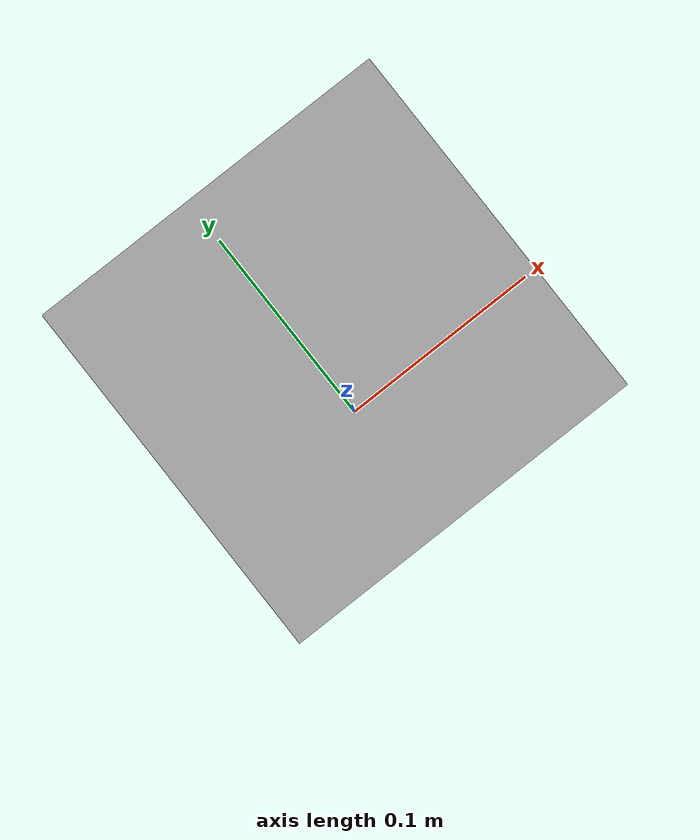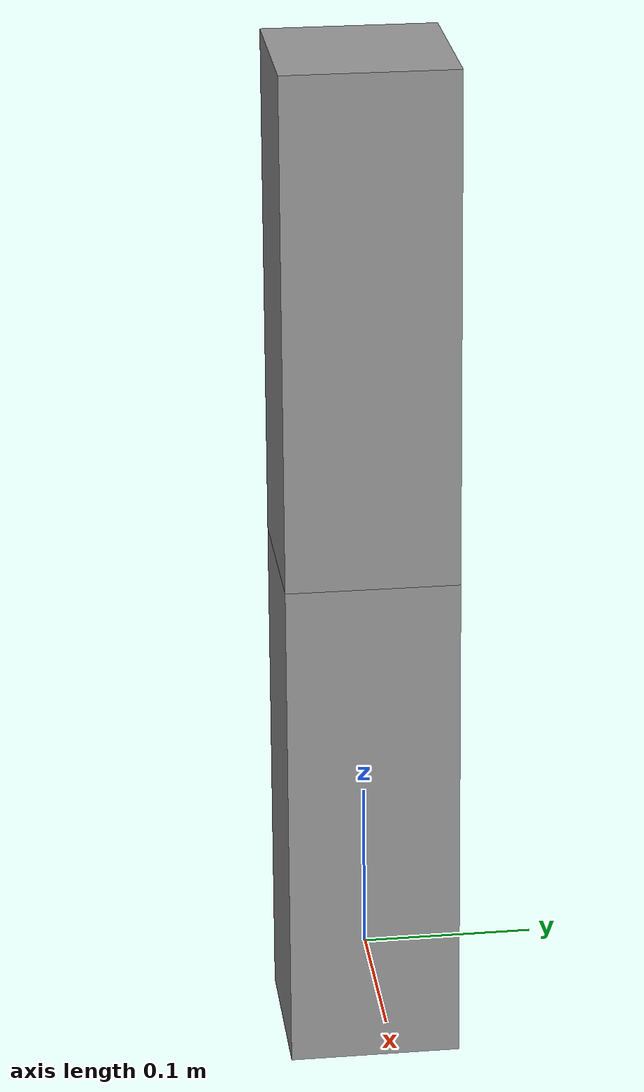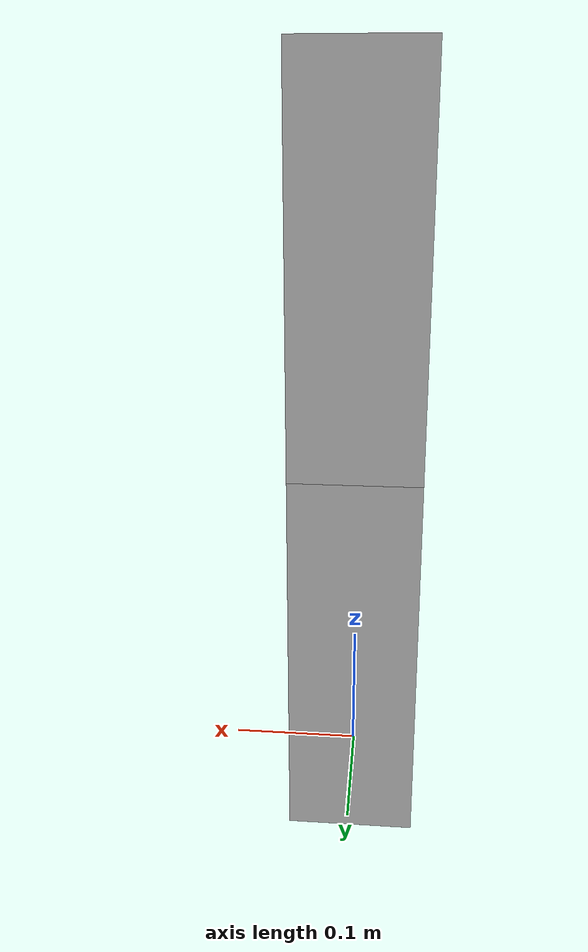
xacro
<?xml version="1.0"?>
<robot xmlns:xacro="http://www.ros.org/wiki/xacro" name="fixture_arm">

  <xacro:include filename="$(find fixture_common)/urdf/common_materials.xacro"/>

  <xacro:arg name="prefix" default=""/>
  <xacro:property name="link_len" value="0.3"/>

  <link name="$(arg prefix)base_link"/>

  <!-- Defined in the sibling package: if the include silently produced nothing,
       this invocation fails rather than yielding a robot missing a material. -->
  <xacro:fixture_link name="$(arg prefix)link_1"/>
  <xacro:fixture_link name="$(arg prefix)link_2"/>

  <joint name="$(arg prefix)joint_1" type="revolute">
    <parent link="$(arg prefix)base_link"/>
    <child link="$(arg prefix)link_1"/>
    <origin xyz="0 0 0.1" rpy="0 0 0"/>
    <axis xyz="0 0 1"/>
    <limit lower="-3.14" upper="3.14" effort="100" velocity="2.0"/>
  </joint>

  <joint name="$(arg prefix)joint_2" type="revolute">
    <parent link="$(arg prefix)link_1"/>
    <child link="$(arg prefix)link_2"/>
    <origin xyz="0 0 ${link_len}" rpy="0 0 0"/>
    <axis xyz="0 1 0"/>
    <limit lower="-1.57" upper="1.57" effort="100" velocity="2.0"/>
  </joint>

</robot>

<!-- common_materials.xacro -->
<!-- The sibling package. Reached only through $(find fixture_common), which is
     the thing being tested: this file is in a *different* package from the
     robot that includes it. -->
<robot xmlns:xacro="http://www.ros.org/wiki/xacro">

  <material name="fixture_grey">
    <color rgba="0.6 0.6 0.6 1.0"/>
  </material>

  <!-- A macro defined here and invoked from the other package, so a failure to
       resolve shows up as a missing macro rather than a missing material. -->
  <xacro:macro name="fixture_link" params="name">
    <link name="${name}">
      <visual>
        <geometry><box size="0.1 0.1 0.3"/></geometry>
        <material name="fixture_grey"/>
      </visual>
    </link>
  </xacro:macro>

</robot>
